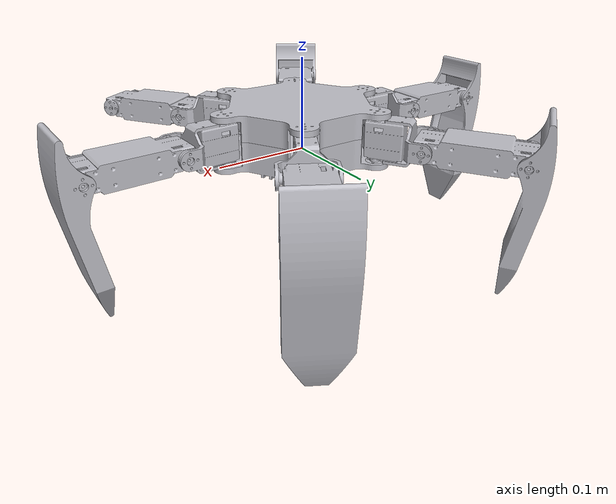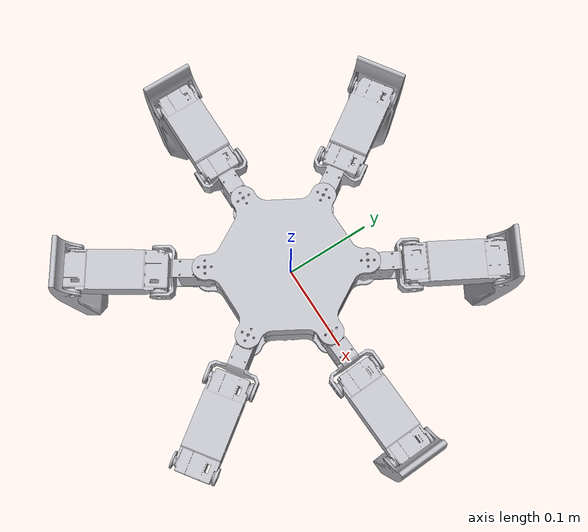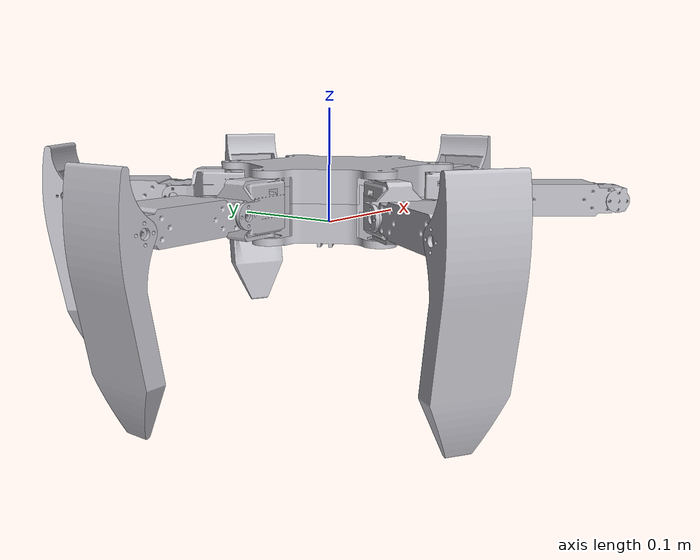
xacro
<?xml version="1.0" ?>
<robot name="hexapod" xmlns:xacro="http://www.ros.org/wiki/xacro">

<xacro:include filename="materials.xacro" />

<link name="base_link">
  <inertial>
    <origin xyz="0.000402323158202931 -0.006408606809467444 -0.0008934136825454772" rpy="0 0 0"/>
    <mass value="1.2532302907744557"/>
    <inertia ixx="0.002389" iyy="0.00243" izz="0.004702" ixy="-0.0" iyz="-0.0" ixz="-0.0"/>
  </inertial>
  <visual>
    <origin xyz="0 0 0" rpy="0 0 0"/>
    <geometry>
      <mesh filename="package://hexapod/meshes/base_link.stl" scale="0.001 0.001 0.001"/>
    </geometry>
    <material name="silver"/>
  </visual>
  <collision>
    <origin xyz="0 0 0" rpy="0 0 0"/>
    <geometry>
      <mesh filename="package://hexapod/meshes/base_link.stl" scale="0.001 0.001 0.001"/>
    </geometry>
  </collision>
</link>

<link name="link_1_v1_1_6">
  <inertial>
    <origin xyz="-0.009119599596452234 -0.013834419227087363 0.02497248793502356" rpy="0 0 0"/>
    <mass value="0.2868158630289448"/>
    <inertia ixx="0.000104" iyy="8.6e-05" izz="0.000102" ixy="-2.2e-05" iyz="2e-06" ixz="1e-06"/>
  </inertial>
  <visual>
    <origin xyz="0.043597 0.082619 0.0021" rpy="0 0 0"/>
    <geometry>
      <mesh filename="package://hexapod/meshes/link_1_v1_1_6.stl" scale="0.001 0.001 0.001"/>
    </geometry>
    <material name="silver"/>
  </visual>
  <collision>
    <origin xyz="0.043597 0.082619 0.0021" rpy="0 0 0"/>
    <geometry>
      <mesh filename="package://hexapod/meshes/link_1_v1_1_6.stl" scale="0.001 0.001 0.001"/>
    </geometry>
  </collision>
</link>

<link name="link_1_v1_1_1">
  <inertial>
    <origin xyz="0.009664258824036875 -0.01345959320351453 0.024972487935023564" rpy="0 0 0"/>
    <mass value="0.2868158630289448"/>
    <inertia ixx="0.000103" iyy="8.7e-05" izz="0.000102" ixy="2.2e-05" iyz="2e-06" ixz="-1e-06"/>
  </inertial>
  <visual>
    <origin xyz="-0.044403 0.082619 0.0021" rpy="0 0 0"/>
    <geometry>
      <mesh filename="package://hexapod/meshes/link_1_v1_1_1.stl" scale="0.001 0.001 0.001"/>
    </geometry>
    <material name="silver"/>
  </visual>
  <collision>
    <origin xyz="-0.044403 0.082619 0.0021" rpy="0 0 0"/>
    <geometry>
      <mesh filename="package://hexapod/meshes/link_1_v1_1_1.stl" scale="0.001 0.001 0.001"/>
    </geometry>
  </collision>
</link>

<link name="link_1_v1_1_4">
  <inertial>
    <origin xyz="0.01655853411091676 0.0006174105923810631 0.02497248793502356" rpy="0 0 0"/>
    <mass value="0.2868158630289448"/>
    <inertia ixx="7.1e-05" iyy="0.000119" izz="0.000102" ixy="-1e-06" iyz="-0.0" ixz="-3e-06"/>
  </inertial>
  <visual>
    <origin xyz="-0.088403 0.006409 0.0021" rpy="0 0 0"/>
    <geometry>
      <mesh filename="package://hexapod/meshes/link_1_v1_1_4.stl" scale="0.001 0.001 0.001"/>
    </geometry>
    <material name="silver"/>
  </visual>
  <collision>
    <origin xyz="-0.088403 0.006409 0.0021" rpy="0 0 0"/>
    <geometry>
      <mesh filename="package://hexapod/meshes/link_1_v1_1_4.stl" scale="0.001 0.001 0.001"/>
    </geometry>
  </collision>
</link>

<link name="link_1_v1_1_2">
  <inertial>
    <origin xyz="0.008211831309080708 0.014391653710902022 0.024972487935023564" rpy="0 0 0"/>
    <mass value="0.2868158630289448"/>
    <inertia ixx="0.000107" iyy="8.4e-05" izz="0.000102" ixy="-2.1e-05" iyz="-2e-06" ixz="-1e-06"/>
  </inertial>
  <visual>
    <origin xyz="-0.044403 -0.069802 0.0021" rpy="0 0 0"/>
    <geometry>
      <mesh filename="package://hexapod/meshes/link_1_v1_1_2.stl" scale="0.001 0.001 0.001"/>
    </geometry>
    <material name="silver"/>
  </visual>
  <collision>
    <origin xyz="-0.044403 -0.069802 0.0021" rpy="0 0 0"/>
    <geometry>
      <mesh filename="package://hexapod/meshes/link_1_v1_1_2.stl" scale="0.001 0.001 0.001"/>
    </geometry>
  </collision>
</link>

<link name="link_1_v1_1_3">
  <inertial>
    <origin xyz="-0.009072415563632093 0.013865270655351092 0.02497248793502356" rpy="0 0 0"/>
    <mass value="0.2868158630289448"/>
    <inertia ixx="0.000105" iyy="8.5e-05" izz="0.000102" ixy="2.2e-05" iyz="-2e-06" ixz="1e-06"/>
  </inertial>
  <visual>
    <origin xyz="0.043597 -0.069802 0.0021" rpy="0 0 0"/>
    <geometry>
      <mesh filename="package://hexapod/meshes/link_1_v1_1_3.stl" scale="0.001 0.001 0.001"/>
    </geometry>
    <material name="silver"/>
  </visual>
  <collision>
    <origin xyz="0.043597 -0.069802 0.0021" rpy="0 0 0"/>
    <geometry>
      <mesh filename="package://hexapod/meshes/link_1_v1_1_3.stl" scale="0.001 0.001 0.001"/>
    </geometry>
  </collision>
</link>

<link name="link_1_v1_1_5">
  <inertial>
    <origin xyz="-0.0165693988297837 0.00014444549575706126 0.02497248793502358" rpy="0 0 0"/>
    <mass value="0.2868158630289448"/>
    <inertia ixx="7.1e-05" iyy="0.000119" izz="0.000102" ixy="1e-06" iyz="-0.0" ixz="3e-06"/>
  </inertial>
  <visual>
    <origin xyz="0.089297 0.006409 0.0021" rpy="0 0 0"/>
    <geometry>
      <mesh filename="package://hexapod/meshes/link_1_v1_1_5.stl" scale="0.001 0.001 0.001"/>
    </geometry>
    <material name="silver"/>
  </visual>
  <collision>
    <origin xyz="0.089297 0.006409 0.0021" rpy="0 0 0"/>
    <geometry>
      <mesh filename="package://hexapod/meshes/link_1_v1_1_5.stl" scale="0.001 0.001 0.001"/>
    </geometry>
  </collision>
</link>

<link name="link_2_v1_1_1">
  <inertial>
    <origin xyz="0.006290836000516109 -0.05481802459999906 -7.026571801835302e-08" rpy="0 0 0"/>
    <mass value="0.6177504574485608"/>
    <inertia ixx="0.00057" iyy="0.000371" izz="0.00087" ixy="0.000309" iyz="0.0" ixz="-0.0"/>
  </inertial>
  <visual>
    <origin xyz="-0.095156 0.10997 -0.0244" rpy="0 0 0"/>
    <geometry>
      <mesh filename="package://hexapod/meshes/link_2_v1_1_1.stl" scale="0.001 0.001 0.001"/>
    </geometry>
    <material name="silver"/>
  </visual>
  <collision>
    <origin xyz="-0.095156 0.10997 -0.0244" rpy="0 0 0"/>
    <geometry>
      <mesh filename="package://hexapod/meshes/link_2_v1_1_1.stl" scale="0.001 0.001 0.001"/>
    </geometry>
  </collision>
</link>

<link name="link_2_v1_1_2">
  <inertial>
    <origin xyz="0.04916410051045869 -0.02504841938288667 -7.026571796631131e-08" rpy="0 0 0"/>
    <mass value="0.6177504574485608"/>
    <inertia ixx="0.000147" iyy="0.000794" izz="0.00087" ixy="-2.9e-05" iyz="0.0" ixz="-0.0"/>
  </inertial>
  <visual>
    <origin xyz="-0.139245 -0.020778 -0.0244" rpy="0 0 0"/>
    <geometry>
      <mesh filename="package://hexapod/meshes/link_2_v1_1_2.stl" scale="0.001 0.001 0.001"/>
    </geometry>
    <material name="silver"/>
  </visual>
  <collision>
    <origin xyz="-0.139245 -0.020778 -0.0244" rpy="0 0 0"/>
    <geometry>
      <mesh filename="package://hexapod/meshes/link_2_v1_1_2.stl" scale="0.001 0.001 0.001"/>
    </geometry>
  </collision>
</link>

<link name="link_2_v1_1_6">
  <inertial>
    <origin xyz="-0.04895349399788656 -0.02545740811131758 -7.02657179801891e-08" rpy="0 0 0"/>
    <mass value="0.6177504574485608"/>
    <inertia ixx="0.000603" iyy="0.000339" izz="0.00087" ixy="-0.000296" iyz="0.0" ixz="0.0"/>
  </inertial>
  <visual>
    <origin xyz="0.051014 0.139794 -0.0244" rpy="0 0 0"/>
    <geometry>
      <mesh filename="package://hexapod/meshes/link_2_v1_1_6.stl" scale="0.001 0.001 0.001"/>
    </geometry>
    <material name="silver"/>
  </visual>
  <collision>
    <origin xyz="0.051014 0.139794 -0.0244" rpy="0 0 0"/>
    <geometry>
      <mesh filename="package://hexapod/meshes/link_2_v1_1_6.stl" scale="0.001 0.001 0.001"/>
    </geometry>
  </collision>
</link>

<link name="link_2_v1_1_4">
  <inertial>
    <origin xyz="0.0472165681737606 0.02855051863506336 -7.026571796284187e-08" rpy="0 0 0"/>
    <mass value="0.6177504574485608"/>
    <inertia ixx="0.00064" iyy="0.000302" izz="0.00087" ixy="-0.000277" iyz="-0.0" ixz="-0.0"/>
  </inertial>
  <visual>
    <origin xyz="-0.048131 -0.127335 -0.0244" rpy="0 0 0"/>
    <geometry>
      <mesh filename="package://hexapod/meshes/link_2_v1_1_4.stl" scale="0.001 0.001 0.001"/>
    </geometry>
    <material name="silver"/>
  </visual>
  <collision>
    <origin xyz="-0.048131 -0.127335 -0.0244" rpy="0 0 0"/>
    <geometry>
      <mesh filename="package://hexapod/meshes/link_2_v1_1_4.stl" scale="0.001 0.001 0.001"/>
    </geometry>
  </collision>
</link>

<link name="link_2_v1_1_5">
  <inertial>
    <origin xyz="-0.005755682592959402 0.053807147227421415 -7.026571819876426e-08" rpy="0 0 0"/>
    <mass value="0.6177504574485608"/>
    <inertia ixx="0.000596" iyy="0.000345" izz="0.00087" ixy="0.000299" iyz="0.0" ixz="-0.0"/>
  </inertial>
  <visual>
    <origin xyz="0.093119 -0.099325 -0.0244" rpy="0 0 0"/>
    <geometry>
      <mesh filename="package://hexapod/meshes/link_2_v1_1_5.stl" scale="0.001 0.001 0.001"/>
    </geometry>
    <material name="silver"/>
  </visual>
  <collision>
    <origin xyz="0.093119 -0.099325 -0.0244" rpy="0 0 0"/>
    <geometry>
      <mesh filename="package://hexapod/meshes/link_2_v1_1_5.stl" scale="0.001 0.001 0.001"/>
    </geometry>
  </collision>
</link>

<link name="link_2_v1_1_3">
  <inertial>
    <origin xyz="-0.04803790977822023 -0.027138664385555632 -7.026571786569735e-08" rpy="0 0 0"/>
    <mass value="0.6177504574485608"/>
    <inertia ixx="0.000146" iyy="0.000795" izz="0.00087" ixy="1e-06" iyz="0.0" ixz="-0.0"/>
  </inertial>
  <visual>
    <origin xyz="0.141258 -0.020168 -0.0244" rpy="0 0 0"/>
    <geometry>
      <mesh filename="package://hexapod/meshes/link_2_v1_1_3.stl" scale="0.001 0.001 0.001"/>
    </geometry>
    <material name="silver"/>
  </visual>
  <collision>
    <origin xyz="0.141258 -0.020168 -0.0244" rpy="0 0 0"/>
    <geometry>
      <mesh filename="package://hexapod/meshes/link_2_v1_1_3.stl" scale="0.001 0.001 0.001"/>
    </geometry>
  </collision>
</link>

<link name="L3_v4_1_2">
  <inertial>
    <origin xyz="0.0029226702791636527 0.025855385438347568 -0.06253428803669432" rpy="0 0 0"/>
    <mass value="0.6616082583376713"/>
    <inertia ixx="0.001835" iyy="0.001684" izz="0.000255" ixy="7e-06" iyz="-1e-05" ixz="-0.000233"/>
  </inertial>
  <visual>
    <origin xyz="-0.23747 0.027103 -0.0244" rpy="0 0 0"/>
    <geometry>
      <mesh filename="package://hexapod/meshes/L3_v4_1_2.stl" scale="0.001 0.001 0.001"/>
    </geometry>
    <material name="silver"/>
  </visual>
  <collision>
    <origin xyz="-0.23747 0.027103 -0.0244" rpy="0 0 0"/>
    <geometry>
      <mesh filename="package://hexapod/meshes/L3_v4_1_2.stl" scale="0.001 0.001 0.001"/>
    </geometry>
  </collision>
</link>

<link name="L3_v4_1_3">
  <inertial>
    <origin xyz="0.024404322053452138 -0.009026177091379595 -0.06253428803669486" rpy="0 0 0"/>
    <mass value="0.6616082583376713"/>
    <inertia ixx="0.00172" iyy="0.001799" izz="0.000255" ixy="6.5e-05" iyz="-0.000203" ixz="-0.000114"/>
  </inertial>
  <visual>
    <origin xyz="-0.095321 -0.210936 -0.0244" rpy="0 0 0"/>
    <geometry>
      <mesh filename="package://hexapod/meshes/L3_v4_1_3.stl" scale="0.001 0.001 0.001"/>
    </geometry>
    <material name="silver"/>
  </visual>
  <collision>
    <origin xyz="-0.095321 -0.210936 -0.0244" rpy="0 0 0"/>
    <geometry>
      <mesh filename="package://hexapod/meshes/L3_v4_1_3.stl" scale="0.001 0.001 0.001"/>
    </geometry>
  </collision>
</link>

<link name="L3_v4_1_6">
  <inertial>
    <origin xyz="0.019151421029623916 0.017614376109464286 -0.06253428803669556" rpy="0 0 0"/>
    <mass value="0.6616082583376713"/>
    <inertia ixx="0.00173" iyy="0.001789" izz="0.000255" ixy="-7e-05" iyz="-0.000194" ixz="0.000129"/>
  </inertial>
  <visual>
    <origin xyz="0.146259 -0.179276 -0.0244" rpy="0 0 0"/>
    <geometry>
      <mesh filename="package://hexapod/meshes/L3_v4_1_6.stl" scale="0.001 0.001 0.001"/>
    </geometry>
    <material name="silver"/>
  </visual>
  <collision>
    <origin xyz="0.146259 -0.179276 -0.0244" rpy="0 0 0"/>
    <geometry>
      <mesh filename="package://hexapod/meshes/L3_v4_1_6.stl" scale="0.001 0.001 0.001"/>
    </geometry>
  </collision>
</link>

<link name="L3_v4_1_5">
  <inertial>
    <origin xyz="-0.004030686150665319 0.02570609720343514 -0.06253428803669454" rpy="0 0 0"/>
    <mass value="0.6616082583376713"/>
    <inertia ixx="0.001836" iyy="0.001684" izz="0.000255" ixy="-0.0" iyz="-0.0" ixz="0.000233"/>
  </inertial>
  <visual>
    <origin xyz="0.237335 0.031891 -0.0244" rpy="0 0 0"/>
    <geometry>
      <mesh filename="package://hexapod/meshes/L3_v4_1_5.stl" scale="0.001 0.001 0.001"/>
    </geometry>
    <material name="silver"/>
  </visual>
  <collision>
    <origin xyz="0.237335 0.031891 -0.0244" rpy="0 0 0"/>
    <geometry>
      <mesh filename="package://hexapod/meshes/L3_v4_1_5.stl" scale="0.001 0.001 0.001"/>
    </geometry>
  </collision>
</link>

<link name="L3_v4_1_4">
  <inertial>
    <origin xyz="0.019344516571139392 -0.01740187308380231 -0.06253428803669474" rpy="0 0 0"/>
    <mass value="0.6616082583376713"/>
    <inertia ixx="0.001729" iyy="0.001791" izz="0.000255" ixy="6.9e-05" iyz="0.000196" ixz="0.000127"/>
  </inertial>
  <visual>
    <origin xyz="0.147058 0.191913 -0.0244" rpy="0 0 0"/>
    <geometry>
      <mesh filename="package://hexapod/meshes/L3_v4_1_4.stl" scale="0.001 0.001 0.001"/>
    </geometry>
    <material name="silver"/>
  </visual>
  <collision>
    <origin xyz="0.147058 0.191913 -0.0244" rpy="0 0 0"/>
    <geometry>
      <mesh filename="package://hexapod/meshes/L3_v4_1_4.stl" scale="0.001 0.001 0.001"/>
    </geometry>
  </collision>
</link>

<link name="Top_plate_v2_1">
  <inertial>
    <origin xyz="-0.06314102602417976 -0.03645460798574804 0.022319149849514854" rpy="0 0 0"/>
    <mass value="1.2163426849674803"/>
    <inertia ixx="0.002266" iyy="0.002308" izz="0.004505" ixy="0.0" iyz="-0.0" ixz="0.0"/>
  </inertial>
  <visual>
    <origin xyz="-0.063545 -0.030046 -0.026" rpy="0 0 0"/>
    <geometry>
      <mesh filename="package://hexapod/meshes/Top_plate_v2_1.stl" scale="0.001 0.001 0.001"/>
    </geometry>
    <material name="silver"/>
  </visual>
  <collision>
    <origin xyz="-0.063545 -0.030046 -0.026" rpy="0 0 0"/>
    <geometry>
      <mesh filename="package://hexapod/meshes/Top_plate_v2_1.stl" scale="0.001 0.001 0.001"/>
    </geometry>
  </collision>
</link>

<joint name="Revolute 4" type="continuous">
  <origin xyz="-0.043597 -0.082619 -0.0021" rpy="0 0 0"/>
  <parent link="base_link"/>
  <child link="link_1_v1_1_6"/>
  <axis xyz="0.0 0.0 1.0"/>
</joint>

<joint name="Revolute 5" type="continuous">
  <origin xyz="0.044403 -0.082619 -0.0021" rpy="0 0 0"/>
  <parent link="base_link"/>
  <child link="link_1_v1_1_1"/>
  <axis xyz="0.0 0.0 -1.0"/>
</joint>

<joint name="Revolute 6" type="continuous">
  <origin xyz="0.088403 -0.006409 -0.0021" rpy="0 0 0"/>
  <parent link="base_link"/>
  <child link="link_1_v1_1_4"/>
  <axis xyz="0.0 0.0 -1.0"/>
</joint>

<joint name="Revolute 7" type="continuous">
  <origin xyz="0.044403 0.069802 -0.0021" rpy="0 0 0"/>
  <parent link="base_link"/>
  <child link="link_1_v1_1_2"/>
  <axis xyz="0.0 0.0 -1.0"/>
</joint>

<joint name="Revolute 8" type="continuous">
  <origin xyz="-0.043597 0.069802 -0.0021" rpy="0 0 0"/>
  <parent link="base_link"/>
  <child link="link_1_v1_1_3"/>
  <axis xyz="0.0 0.0 1.0"/>
</joint>

<joint name="Revolute 9" type="continuous">
  <origin xyz="-0.089297 -0.006409 -0.0021" rpy="0 0 0"/>
  <parent link="base_link"/>
  <child link="link_1_v1_1_5"/>
  <axis xyz="0.0 0.0 1.0"/>
</joint>

<joint name="Revolute 10" type="continuous">
  <origin xyz="0.050753 -0.027351 0.0265" rpy="0 0 0"/>
  <parent link="link_1_v1_1_1"/>
  <child link="link_2_v1_1_1"/>
  <axis xyz="-0.808072 -0.589084 -0.0"/>
</joint>

<joint name="Revolute 11" type="continuous">
  <origin xyz="0.050842 0.027187 0.0265" rpy="0 0 0"/>
  <parent link="link_1_v1_1_4"/>
  <child link="link_2_v1_1_2"/>
  <axis xyz="0.044449 -0.999012 -0.0"/>
</joint>

<joint name="Revolute 12" type="continuous">
  <origin xyz="-0.007417 -0.057175 0.0265" rpy="0 0 0"/>
  <parent link="link_1_v1_1_6"/>
  <child link="link_2_v1_1_6"/>
  <axis xyz="0.838877 -0.544321 0.0"/>
</joint>

<joint name="Revolute 13" type="continuous">
  <origin xyz="0.003728 0.057533 0.0265" rpy="0 0 0"/>
  <parent link="link_1_v1_1_2"/>
  <child link="link_2_v1_1_4"/>
  <axis xyz="0.872118 -0.489295 -0.0"/>
</joint>

<joint name="Revolute 14" type="continuous">
  <origin xyz="-0.049522 0.029523 0.0265" rpy="0 0 0"/>
  <parent link="link_1_v1_1_3"/>
  <child link="link_2_v1_1_5"/>
  <axis xyz="0.83282 0.553544 -0.0"/>
</joint>

<joint name="Revolute 15" type="continuous">
  <origin xyz="-0.051961 0.026577 0.0265" rpy="0 0 0"/>
  <parent link="link_1_v1_1_5"/>
  <child link="link_2_v1_1_3"/>
  <axis xyz="0.001471 0.999999 -0.0"/>
</joint>

<joint name="Revolute 16" type="continuous">
  <origin xyz="0.098225 -0.047881 0.0" rpy="0 0 0"/>
  <parent link="link_2_v1_1_2"/>
  <child link="L3_v4_1_2"/>
  <axis xyz="0.044449 -0.999012 -0.0"/>
</joint>

<joint name="Revolute 17" type="continuous">
  <origin xyz="0.04719 0.083601 0.0" rpy="0 0 0"/>
  <parent link="link_2_v1_1_4"/>
  <child link="L3_v4_1_3"/>
  <axis xyz="0.872118 -0.489295 -0.0"/>
</joint>

<joint name="Revolute 18" type="continuous">
  <origin xyz="-0.05314 0.079951 0.0" rpy="0 0 0"/>
  <parent link="link_2_v1_1_5"/>
  <child link="L3_v4_1_6"/>
  <axis xyz="-0.83282 -0.553544 0.0"/>
</joint>

<joint name="Revolute 19" type="continuous">
  <origin xyz="-0.096077 -0.052059 0.0" rpy="0 0 0"/>
  <parent link="link_2_v1_1_3"/>
  <child link="L3_v4_1_5"/>
  <axis xyz="-0.001471 -0.999999 0.0"/>
</joint>

<joint name="Revolute 20" type="continuous">
  <origin xyz="-0.096044 -0.052119 0.0" rpy="0 0 0"/>
  <parent link="link_2_v1_1_6"/>
  <child link="L3_v4_1_4"/>
  <axis xyz="-0.838877 0.544321 -0.0"/>
</joint>

<joint name="Rigid 21" type="fixed">
  <origin xyz="0.063545 0.030046 0.026" rpy="0 0 0"/>
  <parent link="base_link"/>
  <child link="Top_plate_v2_1"/>
</joint>

</robot>
